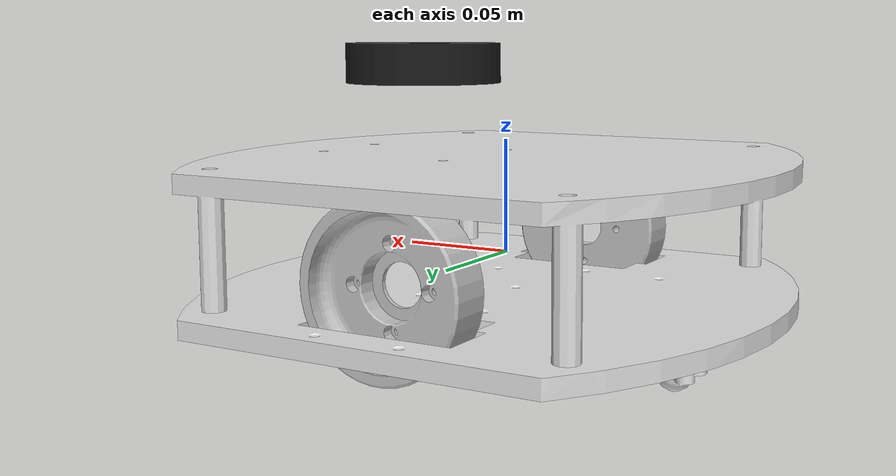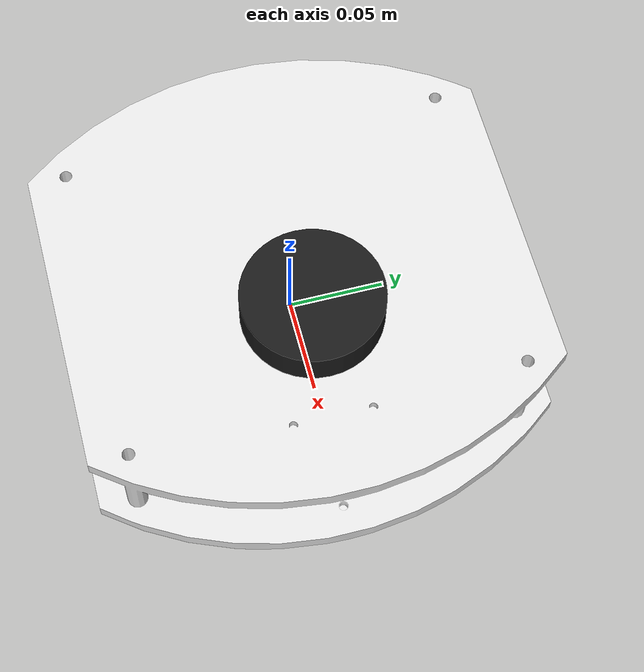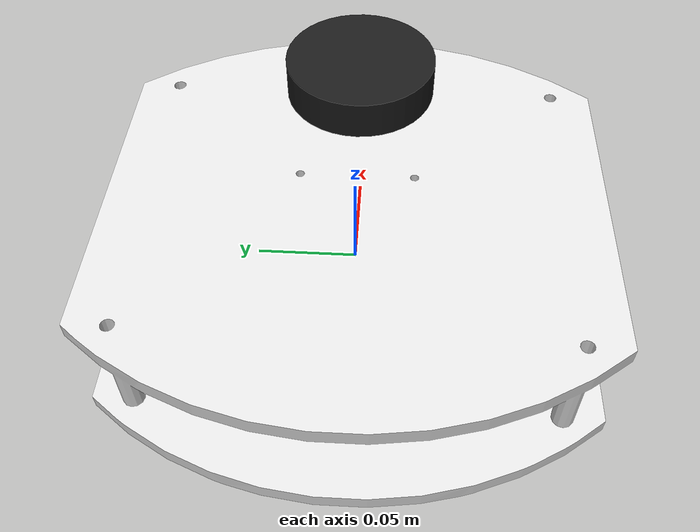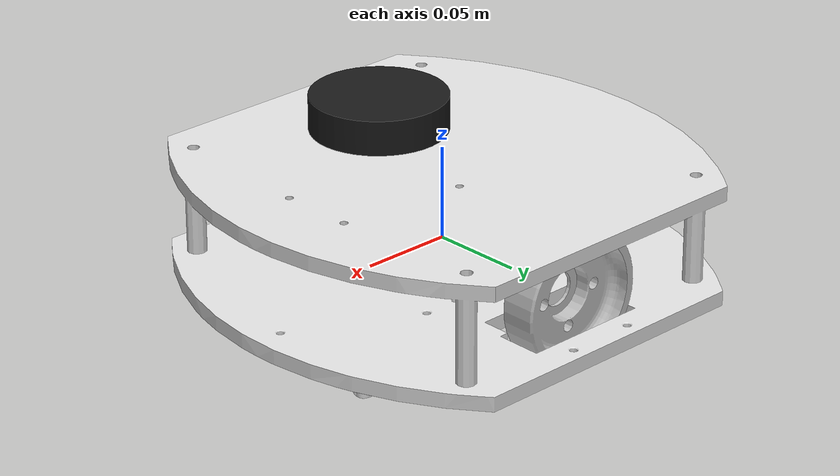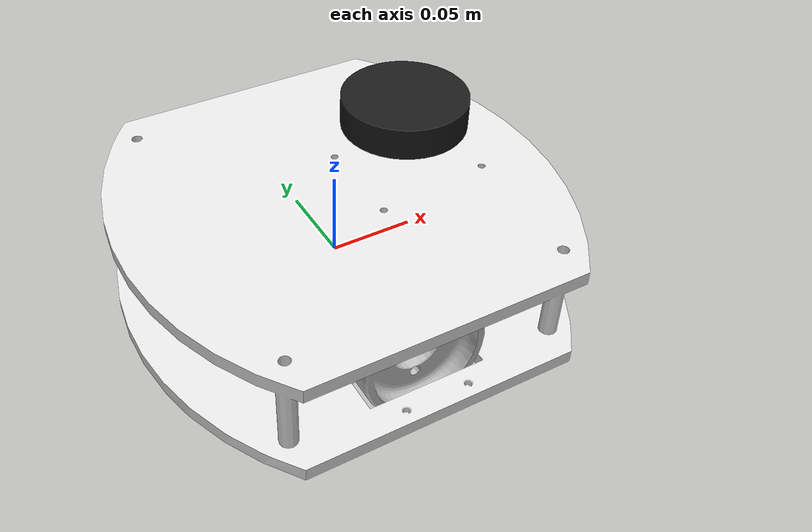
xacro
<?xml version="1.0"?>
<robot xmlns:xacro="http://www.ros.org.wiki.xacro" name="rpibot">

    <xacro:include filename="robot_description.urdf.xacro"/>
    <xacro:include filename="gazebo_control.xacro"/>

</robot>

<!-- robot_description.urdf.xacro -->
<robot xmlns:xacro="http://www.ros.org/wiki/xacro" >

  <link name="base_link">

  </link>
  <link
    name="chassis_link">
    <inertial>
      <origin
        xyz="1.89291834099631E-05 -5.21505606329551E-17 0.0261554583179408"
        rpy="0 0 0" />
      <mass
        value="0.820453668355261" />
      <inertia
        ixx="0.00343745597720794"
        ixy="-1.33118464296835E-18"
        ixz="3.3239094876414E-08"
        iyy="0.00376355614223957"
        iyz="-3.64969624858544E-20"
        izz="0.00716840725205158" />
    </inertial>
    <visual>
      <origin
        xyz="0 0 0"
        rpy="0 0 0" />
      <geometry>
        <mesh
          filename="file:///home/steph/dev_ws/src/rpibot/meshes/chassis_link.STL" />
      </geometry>
      <material
        name="">
        <color
          rgba="0.894117647058823 0.894117647058823 0.894117647058823 1" />
      </material>
    </visual>
    <collision>
      <origin
        xyz="0 0 0"
        rpy="0 0 0" />
      <geometry>
        <mesh
          filename="file:///home/steph/dev_ws/src/rpibot/meshes/chassis_link.STL" />
      </geometry>
    </collision>
  </link>

  <joint name="chassis_joint" type="fixed">
    <parent link = "base_link"/>
    <child link = "chassis_link"/>
    <origin
      xyz="0 0 -0.0155"/>
  </joint>

  <link
    name="left_wheel_link">
    <inertial>
      <origin
        xyz="1.16035451535532E-18 6.93889390390723E-18 -0.00268837094059923"
        rpy="0 0 0" />
      <mass
        value="0.0472961083388951" />
      <inertia
        ixx="2.11909458848976E-05"
        ixy="-2.64101464026675E-24"
        ixz="-1.58457368331281E-21"
        iyy="2.11909458848976E-05"
        iyz="-4.44100545083484E-21"
        izz="3.991342842481E-05" />
    </inertial>
    <visual>
      <origin
        xyz="0 0 0"
        rpy="0 0 0" />
      <geometry>
        <mesh
          filename="file:///home/steph/dev_ws/src/rpibot/meshes/left_wheel_link.STL" />
      </geometry>
      <material
        name="">
        <color
          rgba="0.752941176470588 0.752941176470588 0.752941176470588 1" />
      </material>
    </visual>
    <collision>
      <origin
        xyz="0 0 0"
        rpy="0 0 0" />
      <geometry>
        <mesh
          filename="file:///home/steph/dev_ws/src/rpibot/meshes/left_wheel_link.STL" />
      </geometry>
    </collision>
  </link>

  <joint
    name="left_wheel_joint"
    type="continuous">
    <origin
      xyz="6.2609E-05 0.09 0.0155"
      rpy="-1.5708 0 0" />
    <parent
      link="chassis_link" />
    <child
      link="left_wheel_link" />
    <axis
      xyz="0 0 1" />
    <dynamics
      damping="1"
      friction="1" />
  </joint>

  <link
    name="right_wheel_link">
    <inertial>
      <origin
        xyz="-8.43242183162668E-19 -3.46944695195361E-18 -0.00268837094059922"
        rpy="0 0 0" />
      <mass
        value="0.0472961083388952" />
      <inertia
        ixx="2.11909458848976E-05"
        ixy="2.43960739247573E-25"
        ixz="-2.70461141026291E-21"
        iyy="2.11909458848976E-05"
        iyz="4.48416145737291E-21"
        izz="3.991342842481E-05" />
    </inertial>
    <visual>
      <origin
        xyz="0 0 0"
        rpy="0 0 0" />
      <geometry>
        <mesh
          filename="file:///home/steph/dev_ws/src/rpibot/meshes/right_wheel_link.STL" />
      </geometry>
      <material
        name="">
        <color
          rgba="0.752941176470588 0.752941176470588 0.752941176470588 1" />
      </material>
    </visual>
    <collision>
      <origin
        xyz="0 0 0"
        rpy="0 0 0" />
      <geometry>
        <mesh
          filename="file:///home/steph/dev_ws/src/rpibot/meshes/right_wheel_link.STL" />
      </geometry>
    </collision>
  </link>

  <joint
    name="right_wheel_joint"
    type="continuous">
    <origin
      xyz="6.2609E-05 -0.09 0.0155"
      rpy="1.5708 0 0" />
    <parent
      link="chassis_link" />
    <child
      link="right_wheel_link" />
    <axis
      xyz="0 0 -1" />
    <dynamics
      damping="1"
      friction="1" />
  </joint>

  <link
    name="laser_frame">
    <inertial>
      <origin
        xyz="0 3.38181918277552E-34 -0.00900000000000002"
        rpy="0 0 0" />
      <mass
        value="0.069272118011655" />
      <inertia
        ixx="2.3084933327384E-05"
        ixy="-6.627262350311E-53"
        ixz="-7.99343462295646E-38"
        iyy="2.3084933327384E-05"
        iyz="4.21678399541948E-38"
        izz="4.24291722821387E-05" />
    </inertial>
    <visual>
      <origin
        xyz="0 0 0"
        rpy="0 0 0" />
      <geometry>
        <mesh
          filename="file:///home/steph/dev_ws/src/rpibot/meshes/lidar_link.STL" />
      </geometry>
      <material
        name="">
        <color
          rgba="0.101960784313725 0.101960784313725 0.101960784313725 1" />
      </material>
    </visual>
    <collision>
      <origin
        xyz="0 0 0"
        rpy="0 0 0" />
      <geometry>
        <mesh
          filename="file:///home/steph/dev_ws/src/rpibot/meshes/lidar_link.STL" />
      </geometry>
    </collision>
  </link>

  <joint
    name="laser_joint"
    type="fixed">
    <origin
      xyz="0.0430626093076691 0 0.1076"
      rpy="0 0 0" />
    <parent
      link="chassis_link" />
    <child
      link="laser_frame" />
    <axis
      xyz="0 0 0" />
  </joint>

  <link
    name="fr_caster_link">
    <inertial>
      <origin
        xyz="2.4980018054066E-16 -2.28983498828939E-16 0.00173996480983857"
        rpy="0 0 0" />
      <mass
        value="0.00185582478601394" />
      <inertia
        ixx="4.88878926195383E-08"
        ixy="-8.68097383355364E-24"
        ixz="-7.56774428886561E-24"
        iyy="4.88878926195383E-08"
        iyz="7.26988457651607E-24"
        izz="8.72776470384957E-08" />
    </inertial>
    <visual>
      <origin
        xyz="0 0 0"
        rpy="0 0 0" />
      <geometry>
        <mesh
          filename="file:///home/steph/dev_ws/src/rpibot/meshes/fr_caster_link.STL" />
      </geometry>
      <material
        name="">
        <color
          rgba="0.894117647058823 0.894117647058823 0.894117647058823 1" />
      </material>
    </visual>
    <collision>
      <origin
        xyz="0 0 0"
        rpy="0 0 0" />
      <geometry>
        <mesh
          filename="file:///home/steph/dev_ws/src/rpibot/meshes/fr_caster_link.STL" />
      </geometry>
    </collision>
  </link>
  <joint
    name="fr_caster_joint"
    type="fixed">
    <origin
      xyz="0.100062609307669 -0.05 -0.0140000000000002"
      rpy="0 0 0" />
    <parent
      link="chassis_link" />
    <child
      link="fr_caster_link" />
    <axis
      xyz="0 0 0" />
    <dynamics
      damping="1E-06"
      friction="1E-06" />
  </joint>
  <link
    name="fl_caster_link">
    <inertial>
      <origin
        xyz="-2.35922392732846E-16 2.35922392732846E-16 0.00173996480983857"
        rpy="0 0 0" />
      <mass
        value="0.00185582478601395" />
      <inertia
        ixx="4.88878926195383E-08"
        ixy="-6.4080026359354E-24"
        ixz="-4.02583502590903E-24"
        iyy="4.88878926195382E-08"
        iyz="6.03349241917912E-24"
        izz="8.72776470384956E-08" />
    </inertial>
    <visual>
      <origin
        xyz="0 0 0"
        rpy="0 0 0" />
      <geometry>
        <mesh
          filename="file:///home/steph/dev_ws/src/rpibot/meshes/fl_caster_link.STL" />
      </geometry>
      <material
        name="">
        <color
          rgba="0.894117647058823 0.894117647058823 0.894117647058823 1" />
      </material>
    </visual>
    <collision>
      <origin
        xyz="0 0 0"
        rpy="0 0 0" />
      <geometry>
        <mesh
          filename="file:///home/steph/dev_ws/src/rpibot/meshes/fl_caster_link.STL" />
      </geometry>
    </collision>
  </link>
  <joint
    name="fl_caster_joint"
    type="fixed">
    <origin
      xyz="0.10006 0.05 -0.014"
      rpy="0 0 0" />
    <parent
      link="chassis_link" />
    <child
      link="fl_caster_link" />
    <axis
      xyz="0 0 0" />
    <dynamics
      damping="1E-06"
      friction="1E-06" />
  </joint>
  <link
    name="br_caster_link">
    <inertial>
      <origin
        xyz="2.08166817117217E-16 -2.42861286636753E-16 0.00173996480983857"
        rpy="0 0 0" />
      <mass
        value="0.00185582478601394" />
      <inertia
        ixx="4.88878926195383E-08"
        ixy="-1.37377911142332E-23"
        ixz="1.36549320788026E-23"
        iyy="4.88878926195381E-08"
        iyz="1.98579367826622E-24"
        izz="8.72776470384955E-08" />
    </inertial>
    <visual>
      <origin
        xyz="0 0 0"
        rpy="0 0 0" />
      <geometry>
        <mesh
          filename="file:///home/steph/dev_ws/src/rpibot/meshes/br_caster_link.STL" />
      </geometry>
      <material
        name="">
        <color
          rgba="0.894117647058823 0.894117647058823 0.894117647058823 1" />
      </material>
    </visual>
    <collision>
      <origin
        xyz="0 0 0"
        rpy="0 0 0" />
      <geometry>
        <mesh
          filename="file:///home/steph/dev_ws/src/rpibot/meshes/br_caster_link.STL" />
      </geometry>
    </collision>
  </link>
  <joint
    name="br_caster_joint"
    type="fixed">
    <origin
      xyz="-0.099937 -0.05 -0.014"
      rpy="0 0 0" />
    <parent
      link="chassis_link" />
    <child
      link="br_caster_link" />
    <axis
      xyz="0 0 0" />
    <dynamics
      damping="1E-06"
      friction="1E-06" />
  </joint>
  <link
    name="bl_caster_link">
    <inertial>
      <origin
        xyz="-2.35922392732846E-16 2.28983498828939E-16 0.00173996480983857"
        rpy="0 0 0" />
      <mass
        value="0.00185582478601394" />
      <inertia
        ixx="4.88878926195383E-08"
        ixy="-9.09078648366105E-24"
        ixz="7.4144911740129E-24"
        iyy="4.88878926195383E-08"
        iyz="-7.28785172670583E-24"
        izz="8.72776470384957E-08" />
    </inertial>
    <visual>
      <origin
        xyz="0 0 0"
        rpy="0 0 0" />
      <geometry>
        <mesh
          filename="file:///home/steph/dev_ws/src/rpibot/meshes/bl_caster_link.STL" />
      </geometry>
      <material
        name="">
        <color
          rgba="0.894117647058823 0.894117647058823 0.894117647058823 1" />
      </material>
    </visual>
    <collision>
      <origin
        xyz="0 0 0"
        rpy="0 0 0" />
      <geometry>
        <mesh
          filename="file:///home/steph/dev_ws/src/rpibot/meshes/bl_caster_link.STL" />
      </geometry>
    </collision>
  </link>
  <joint
    name="bl_caster_joint"
    type="fixed">
    <origin
      xyz="-0.0999373906923307 0.0500000000000001 -0.0140000000000002"
      rpy="0 0 0" />
    <parent
      link="chassis_link" />
    <child
      link="bl_caster_link" />
    <axis
      xyz="0 0 0" />
    <dynamics
      damping="1E-06"
      friction="1E-06" />
  </joint>
</robot>
